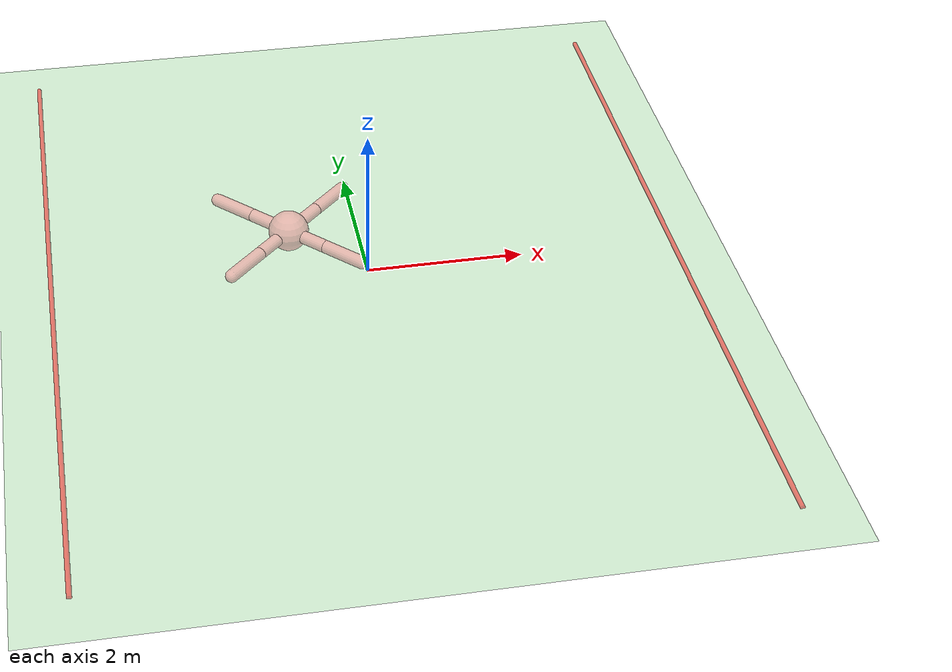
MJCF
<mujoco model="evo-ant-base">
  <compiler angle="degree" coordinate="local" inertiafromgeom="true"/>
  <option integrator="RK4" timestep="0.01"/>
  <default>
    <joint armature="1" damping="1" limited="true"/>
    <geom conaffinity="1" condim="3" density="5.0" friction="1 0.5 0.5" margin="0.01" rgba=".98 .54 .56 .5" material="geom"/>
  </default>
  <visual>
    <headlight ambient=".1 .1 .1" diffuse=".6 .6 .6" specular="0.3 0.3 0.3"/>
    <map znear=".01"/>
    <quality shadowsize="16384"/>
  </visual>
  <worldbody>
    <light cutoff="100" diffuse="1 1 1" dir="-0 0 -1.3" directional="true" exponent="1" pos="0 0 1.3" specular=".1 .1 .1"/>
    <geom contype="1" conaffinity="1" friction="1 .1 .1" condim="3" material="MatPlane" name="floor" pos="0 0 0" rgba="0.8 0.9 0.8 1" size="20 20 0.125" type="plane"/>
    <geom fromto="4 -5 0  4 +5 0" name="rightgoal" rgba="1 0 0 0.5" size=".03" type="cylinder"/>
    <geom fromto="-4 -5 0  -4 +5 0" name="leftgoal" rgba="1 0 0 0.5" size=".03" type="cylinder"/>
    <body name="0" pos="-1 0 0.75" euler="0 0 180">
      <geom pos="0 0 0" size="0.25" type="sphere"/>
      <joint armature="0" damping="0" limited="false" margin="0.01" name="0_joint" pos="0 0 0" range="-30 30" type="free"/>
      <body name="1" pos="0 0 0">
        <geom fromto="0 0 0 0.4 0.4 0" size="0.08" type="capsule"/>
        <joint axis="0 0 1" name="1_joint" pos="0 0 0" range="-30 30" type="hinge"/>
        <body name="11" pos="0.4 0.4 0">
          <geom fromto="0 0 0 0.4 0.4 0" size="0.08" type="capsule"/>
          <joint axis="-0.707107 0.707107 0" name="11_joint" pos="0 0 0" range="30 70" type="hinge"/>
        </body>
        <body name="21" pos="0.4 0.4 0">
          <geom fromto="0 0 0 0.4 0.4 0" size="0.08" type="capsule"/>
          <joint axis="0 0 1" name="21_joint" pos="0 0 0" range="-30 30" type="hinge"/>
        </body>
        <body name="31" pos="0.4 0.4 0">
          <geom fromto="0 0 0 0.4 0.4 0" size="0.08" type="capsule"/>
          <joint axis="0 0 1" name="31_joint" pos="0 0 0" range="-30 30" type="hinge"/>
        </body>
        <body name="41" pos="0.4 0.4 0">
          <geom fromto="0 0 0 0.4 0.4 0" size="0.08" type="capsule"/>
          <joint axis="0 0 1" name="41_joint" pos="0 0 0" range="-30 30" type="hinge"/>
        </body>
      </body>
      <body name="2" pos="0 0 0">
        <geom fromto="0 0 0 -0.4 0.4 0" size="0.08" type="capsule"/>
        <joint axis="0 0 1" name="2_joint" pos="0 0 0" range="-30 30" type="hinge"/>
        <body name="12" pos="-0.4 0.4 0">
          <geom fromto="0 0 0 -0.4 0.4 0" size="0.08" type="capsule"/>
          <joint axis="-0.707107 -0.707107 0" name="12_joint" pos="0 0 0" range="30 70" type="hinge"/>
        </body>
        <body name="22" pos="-0.4 0.4 0">
          <geom fromto="0 0 0 -0.4 0.4 0" size="0.08" type="capsule"/>
          <joint axis="0 0 1" name="22_joint" pos="0 0 0" range="-30 30" type="hinge"/>
        </body>
        <body name="32" pos="-0.4 0.4 0">
          <geom fromto="0 0 0 -0.4 0.4 0" size="0.08" type="capsule"/>
          <joint axis="0 0 1" name="32_joint" pos="0 0 0" range="-30 30" type="hinge"/>
        </body>
        <body name="42" pos="-0.4 0.4 0">
          <geom fromto="0 0 0 -0.4 0.4 0" size="0.08" type="capsule"/>
          <joint axis="0 0 1" name="42_joint" pos="0 0 0" range="-30 30" type="hinge"/>
        </body>
      </body>
      <body name="3" pos="0 0 0">
        <geom fromto="0 0 0 -0.4 -0.4 0" size="0.08" type="capsule"/>
        <joint axis="0 0 1" name="3_joint" pos="0 0 0" range="-30 30" type="hinge"/>
        <body name="13" pos="-0.4 -0.4 0">
          <geom fromto="0 0 0 -0.4 -0.4 0" size="0.08" type="capsule"/>
          <joint axis="0.707107 -0.707107 0" name="13_joint" pos="0 0 0" range="30 70" type="hinge"/>
        </body>
        <body name="23" pos="-0.4 -0.4 0">
          <geom fromto="0 0 0 -0.4 -0.4 0" size="0.08" type="capsule"/>
          <joint axis="0 0 1" name="23_joint" pos="0 0 0" range="-30 30" type="hinge"/>
        </body>
        <body name="33" pos="-0.4 -0.4 0">
          <geom fromto="0 0 0 -0.4 -0.4 0" size="0.08" type="capsule"/>
          <joint axis="0 0 1" name="33_joint" pos="0 0 0" range="-30 30" type="hinge"/>
        </body>
        <body name="43" pos="-0.4 -0.4 0">
          <geom fromto="0 0 0 -0.4 -0.4 0" size="0.08" type="capsule"/>
          <joint axis="0 0 1" name="43_joint" pos="0 0 0" range="-30 30" type="hinge"/>
        </body>
      </body>
      <body name="4" pos="0 0 0">
        <geom fromto="0 0 0 0.4 -0.4 0" size="0.08" type="capsule"/>
        <joint axis="0 0 1" name="4_joint" pos="0 0 0" range="-30 30" type="hinge"/>
        <body name="14" pos="0.4 -0.4 0">
          <geom fromto="0 0 0 0.4 -0.4 0" size="0.08" type="capsule"/>
          <joint axis="0.707107 0.707107 0" name="14_joint" pos="0 0 0" range="30 70" type="hinge"/>
        </body>
        <body name="24" pos="0.4 -0.4 0">
          <geom fromto="0 0 0 0.4 -0.4 0" size="0.08" type="capsule"/>
          <joint axis="0 0 1" name="24_joint" pos="0 0 0" range="-30 30" type="hinge"/>
        </body>
        <body name="34" pos="0.4 -0.4 0">
          <geom fromto="0 0 0 0.4 -0.4 0" size="0.08" type="capsule"/>
          <joint axis="0 0 1" name="34_joint" pos="0 0 0" range="-30 30" type="hinge"/>
        </body>
        <body name="44" pos="0.4 -0.4 0">
          <geom fromto="0 0 0 0.4 -0.4 0" size="0.08" type="capsule"/>
          <joint axis="0 0 1" name="44_joint" pos="0 0 0" range="-30 30" type="hinge"/>
        </body>
      </body>
    </body>
  </worldbody>
  <actuator>
    <motor ctrllimited="true" ctrlrange="-1.0 1.0" joint="1_joint" gear="150" name="1_joint"/>
    <motor ctrllimited="true" ctrlrange="-1.0 1.0" joint="2_joint" gear="150" name="2_joint"/>
    <motor ctrllimited="true" ctrlrange="-1.0 1.0" joint="3_joint" gear="150" name="3_joint"/>
    <motor ctrllimited="true" ctrlrange="-1.0 1.0" joint="4_joint" gear="150" name="4_joint"/>
    <motor ctrllimited="true" ctrlrange="-1.0 1.0" joint="11_joint" gear="150" name="11_joint"/>
    <motor ctrllimited="true" ctrlrange="-1.0 1.0" joint="12_joint" gear="150" name="12_joint"/>
    <motor ctrllimited="true" ctrlrange="-1.0 1.0" joint="13_joint" gear="150" name="13_joint"/>
    <motor ctrllimited="true" ctrlrange="-1.0 1.0" joint="14_joint" gear="150" name="14_joint"/>
    <motor ctrllimited="true" ctrlrange="-1.0 1.0" joint="21_joint" gear="150" name="21_joint"/>
    <motor ctrllimited="true" ctrlrange="-1.0 1.0" joint="22_joint" gear="150" name="22_joint"/>
    <motor ctrllimited="true" ctrlrange="-1.0 1.0" joint="23_joint" gear="150" name="23_joint"/>
    <motor ctrllimited="true" ctrlrange="-1.0 1.0" joint="24_joint" gear="150" name="24_joint"/>
    <motor ctrllimited="true" ctrlrange="-1.0 1.0" joint="31_joint" gear="150" name="31_joint"/>
    <motor ctrllimited="true" ctrlrange="-1.0 1.0" joint="32_joint" gear="150" name="32_joint"/>
    <motor ctrllimited="true" ctrlrange="-1.0 1.0" joint="33_joint" gear="150" name="33_joint"/>
    <motor ctrllimited="true" ctrlrange="-1.0 1.0" joint="34_joint" gear="150" name="34_joint"/>
    <motor ctrllimited="true" ctrlrange="-1.0 1.0" joint="41_joint" gear="150" name="41_joint"/>
    <motor ctrllimited="true" ctrlrange="-1.0 1.0" joint="42_joint" gear="150" name="42_joint"/>
    <motor ctrllimited="true" ctrlrange="-1.0 1.0" joint="43_joint" gear="150" name="43_joint"/>
    <motor ctrllimited="true" ctrlrange="-1.0 1.0" joint="44_joint" gear="150" name="44_joint"/>
  </actuator>
  <asset>
    <texture type="skybox" builtin="gradient" rgb1=".4 .5 .6" rgb2="0 0 0" width="100" height="100"/>
    <texture builtin="flat" height="1278" mark="cross" markrgb="1 1 1" name="texgeom" random="0.01" rgb1="0.8 0.6 0.4" rgb2="0.8 0.6 0.4" type="cube" width="127"/>
    <texture builtin="checker" height="100" name="texplane" rgb1="0 0 0" rgb2="0.8 0.8 0.8" type="2d" width="100"/>
    <material name="MatPlane" reflectance="0.5" shininess="1" specular="1" texrepeat="60 60" texture="texplane"/>
    <material name="geom" texture="texgeom" texuniform="true"/>
    <texture name="grid_new" type="2d" builtin="checker" rgb1=".1 .3 .2" rgb2=".2 .4 .3" width="1000" height="1000" mark="none" markrgb=".8 .6 .4"/>
    <material name="grid_new" texture="grid_new" texrepeat="0.2 0.2" texuniform="true" reflectance=".2"/>
  </asset>
</mujoco>
